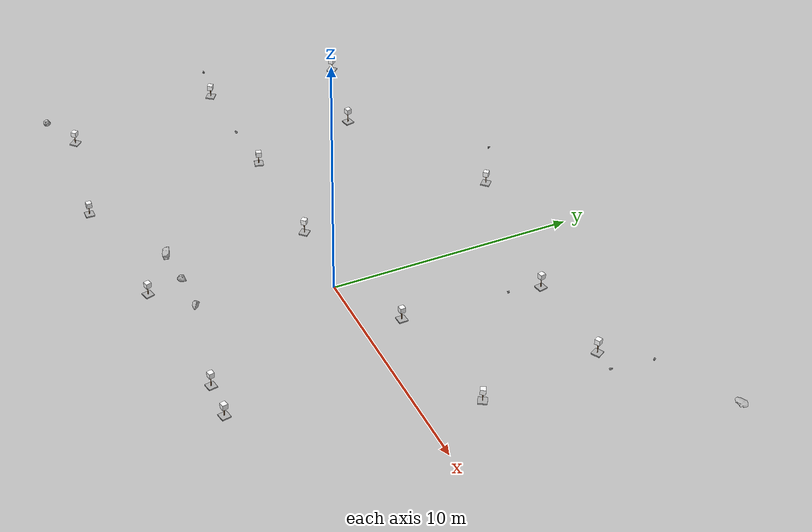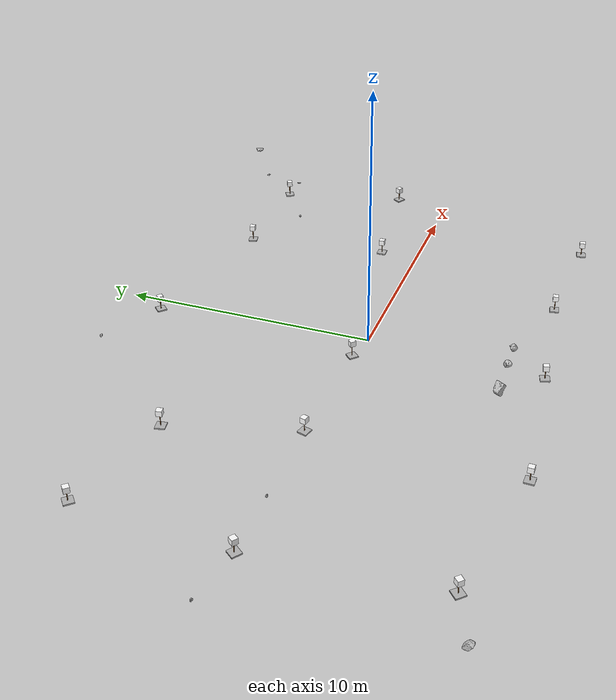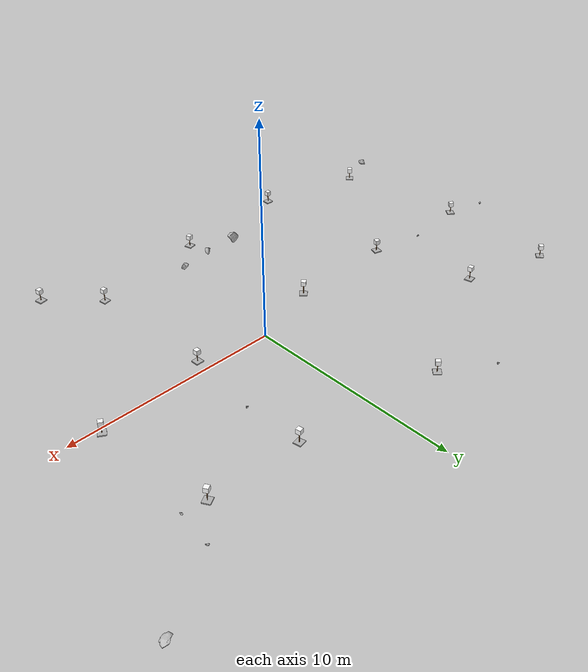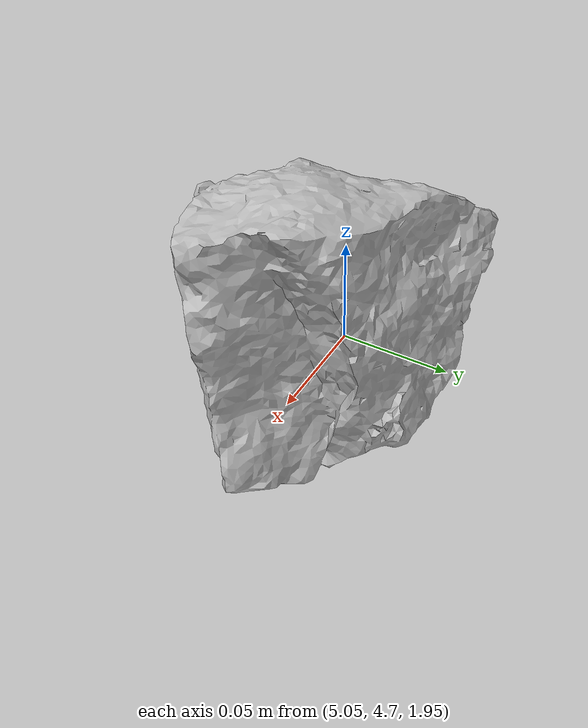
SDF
<sdf version="1.7">
 <world name="marsyard">
  <gravity>0 0 -9.81</gravity>
  <physics name="dart_physics" type="ignored">
   <max_step_size>0.003</max_step_size>
   <real_time_update_rate>333</real_time_update_rate>
   <real_time_factor>1.0</real_time_factor>
  </physics>
  <plugin filename="ignition-gazebo-physics-system" name="ignition::gazebo::systems::Physics"/>
  <plugin filename="ignition-gazebo-user-commands-system" name="ignition::gazebo::systems::UserCommands"/>
  <plugin filename="ignition-gazebo-scene-broadcaster-system" name="ignition::gazebo::systems::SceneBroadcaster"/>
  <plugin filename="ignition-gazebo-contact-system" name="ignition::gazebo::systems::Contact"/>
  <plugin filename="ignition-gazebo-sensors-system" name="ignition::gazebo::systems::Sensors">
   <render_engine>ogre2</render_engine>
  </plugin>
  <plugin filename="ignition-gazebo-imu-system" name="ignition::gazebo::systems::Imu"/>
  <plugin filename="ignition-gazebo-magnetometer-system" name="ignition::gazebo::systems::Magnetometer"/>
  <scene>
   <ambient>0.95 0.95 0.95 1</ambient>
   <background>0.70 0.70 0.70 1</background>
   <shadows>false</shadows>
  </scene>
  <light type="directional" name="sun">
   <cast_shadows>false</cast_shadows>
   <pose>0 0 30 0 0 0</pose>
   <diffuse>1 1 1 1</diffuse>
   <specular>0.15 0.15 0.15 1</specular>
   <direction>-0.35 0.1 -0.93</direction>
  </light>
  <model name="Rock_1">
   <static>true</static>
   <pose>-3.0000 -5.5000 1.2633 0.0000 0.0000 2.8653</pose>
   <link name="link">
    <visual name="visual">
     <geometry><mesh><uri>package://rock_generator/rocks_ws/rock_1/meshes/rock_1.obj</uri></mesh></geometry>
    </visual>
    <collision name="collision">
     <geometry><mesh><uri>package://rock_generator/rocks_ws/rock_1/meshes/rock_1.obj</uri></mesh></geometry>
    </collision>
   </link>
  </model>
  <model name="Rock_2">
   <static>true</static>
   <pose>-1.5000 -5.5000 1.2031 0.0000 0.0000 -2.5661</pose>
   <link name="link">
    <visual name="visual">
     <geometry><mesh><uri>package://rock_generator/rocks_ws/rock_3/meshes/rock_3.obj</uri></mesh></geometry>
    </visual>
    <collision name="collision">
     <geometry><mesh><uri>package://rock_generator/rocks_ws/rock_3/meshes/rock_3.obj</uri></mesh></geometry>
    </collision>
   </link>
  </model>
  <model name="Rock_3">
   <static>true</static>
   <pose>0.0000 -5.5000 0.9745 0.0000 0.0000 2.1080</pose>
   <link name="link">
    <visual name="visual">
     <geometry><mesh><uri>package://rock_generator/rocks_ws/rock_3/meshes/rock_3.obj</uri></mesh></geometry>
    </visual>
    <collision name="collision">
     <geometry><mesh><uri>package://rock_generator/rocks_ws/rock_3/meshes/rock_3.obj</uri></mesh></geometry>
    </collision>
   </link>
  </model>
  <model name="Rock_5">
   <static>true</static>
   <pose>12.8342 9.8867 1.1183 0.0000 0.0000 0.2776</pose>
   <link name="link">
    <visual name="visual">
     <geometry><mesh><uri>package://rock_generator/rocks_ws/rock_8/meshes/rock_8.obj</uri></mesh></geometry>
    </visual>
    <collision name="collision">
     <geometry><mesh><uri>package://rock_generator/rocks_ws/rock_8/meshes/rock_8.obj</uri></mesh></geometry>
    </collision>
   </link>
  </model>
  <model name="Rock_6">
   <static>true</static>
   <pose>9.8386 8.1627 1.3301 0.0000 0.0000 -0.8544</pose>
   <link name="link">
    <visual name="visual">
     <geometry><mesh><uri>package://rock_generator/rocks_ws/rock_6/meshes/rock_6.obj</uri></mesh></geometry>
    </visual>
   </link>
  </model>
  <model name="Rock_7">
   <static>true</static>
   <pose>-13.7364 -7.0964 1.0037 0.0000 0.0000 -1.6927</pose>
   <link name="link">
    <visual name="visual">
     <geometry><mesh><uri>package://rock_generator/rocks_ws/rock_3/meshes/rock_3.obj</uri></mesh></geometry>
    </visual>
    <collision name="collision">
     <geometry><mesh><uri>package://rock_generator/rocks_ws/rock_3/meshes/rock_3.obj</uri></mesh></geometry>
    </collision>
   </link>
  </model>
  <model name="Rock_8">
   <static>true</static>
   <pose>-14.6257 0.2249 0.9982 0.0000 0.0000 3.1333</pose>
   <link name="link">
    <visual name="visual">
     <geometry><mesh><uri>package://rock_generator/rocks_ws/rock_9/meshes/rock_9.obj</uri></mesh></geometry>
    </visual>
    <collision name="collision">
     <geometry><mesh><uri>package://rock_generator/rocks_ws/rock_9/meshes/rock_9.obj</uri></mesh></geometry>
    </collision>
   </link>
  </model>
  <model name="Rock_9">
   <static>true</static>
   <pose>9.5943 6.5287 1.2725 0.0000 0.0000 1.4728</pose>
   <link name="link">
    <visual name="visual">
     <geometry><mesh><uri>package://rock_generator/rocks_ws/rock_6/meshes/rock_6.obj</uri></mesh></geometry>
    </visual>
   </link>
  </model>
  <model name="Rock_10">
   <static>true</static>
   <pose>5.1281 4.7333 2.0340 0.0000 0.0000 -0.2425</pose>
   <link name="link">
    <visual name="visual">
     <geometry><mesh><uri>package://rock_generator/rocks_ws/rock_9/meshes/rock_9.obj</uri></mesh></geometry>
    </visual>
    <collision name="collision">
     <geometry><mesh><uri>package://rock_generator/rocks_ws/rock_9/meshes/rock_9.obj</uri></mesh></geometry>
    </collision>
   </link>
  </model>
  <model name="Rock_11">
   <static>true</static>
   <pose>-10.0687 -0.0426 0.8267 0.0000 0.0000 0.0967</pose>
   <link name="link">
    <visual name="visual">
     <geometry><mesh><uri>package://rock_generator/rocks_ws/rock_6/meshes/rock_6.obj</uri></mesh></geometry>
    </visual>
   </link>
  </model>
  <model name="Rock_12">
   <static>true</static>
   <pose>-4.4500 8.8699 1.0974 0.0000 0.0000 -0.9376</pose>
   <link name="link">
    <visual name="visual">
     <geometry><mesh><uri>package://rock_generator/rocks_ws/rock_9/meshes/rock_9.obj</uri></mesh></geometry>
    </visual>
   </link>
  </model>
  <model name="ArUco_1">
   <pose>-12.450300 5.334200 1.029715 0.000000 0.000000 0.738259</pose>
   <include><uri>model://aruco_1</uri></include>
  </model>
  <model name="ArUco_2">
   <pose>-8.450300 4.334200 1.099796 0.000000 0.000000 0.189239</pose>
   <include><uri>model://aruco_2</uri></include>
  </model>
  <model name="ArUco_3">
   <pose>-2.200300 7.584200 1.154883 0.000000 0.000000 -2.337035</pose>
   <include><uri>model://aruco_3</uri></include>
  </model>
  <model name="ArUco_4">
   <pose>4.299700 6.584200 0.990323 0.000000 0.000000 0.191067</pose>
   <include><uri>model://aruco_4</uri></include>
  </model>
  <model name="ArUco_5">
   <pose>8.549700 6.584200 1.138390 0.000000 0.000000 -1.049408</pose>
   <include><uri>model://aruco_5</uri></include>
  </model>
  <model name="ArUco_6">
   <pose>-12.700300 -0.165800 1.010542 0.000000 0.000000 -0.638148</pose>
   <include><uri>model://aruco_6</uri></include>
  </model>
  <model name="ArUco_7">
   <pose>-7.200300 -0.165800 1.131783 0.000000 0.000000 -1.838701</pose>
   <include><uri>model://aruco_7</uri></include>
  </model>
  <model name="ArUco_8">
   <pose>-2.450300 -0.165800 0.946400 0.000000 0.000000 0.789938</pose>
   <include><uri>model://aruco_8</uri></include>
  </model>
  <model name="ArUco_9">
   <pose>4.299700 0.834200 1.425683 0.000000 0.000000 -1.541121</pose>
   <include><uri>model://aruco_9</uri></include>
  </model>
  <model name="ArUco_10">
   <pose>9.299700 1.584200 1.341597 0.000000 0.000000 -0.534976</pose>
   <include><uri>model://aruco_10</uri></include>
  </model>
  <model name="ArUco_11">
   <pose>-11.950300 -6.415800 0.873342 0.000000 0.000000 -2.394785</pose>
   <include><uri>model://aruco_11</uri></include>
  </model>
  <model name="ArUco_12">
   <pose>-6.950300 -7.415800 0.976442 0.000000 0.000000 1.528778</pose>
   <include><uri>model://aruco_12</uri></include>
  </model>
  <model name="ArUco_13">
   <pose>-1.450300 -6.915800 0.879942 0.000000 0.000000 1.822982</pose>
   <include><uri>model://aruco_13</uri></include>
  </model>
  <model name="ArUco_14">
   <pose>3.799700 -6.415800 0.451417 0.000000 0.000000 -1.405322</pose>
   <include><uri>model://aruco_14</uri></include>
  </model>
  <model name="ArUco_15">
   <pose>6.549700 -6.915800 1.544783 0.000000 0.000000 1.749737</pose>
   <include><uri>model://aruco_15</uri></include>
  </model>
 </world>
</sdf>

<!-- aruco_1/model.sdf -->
<sdf version="1.6">
  <model name="aruco_1">
    <static>true</static>
    <link name="link">
      <visual name="base_visual">
        <pose>0 0 0.025 0 0 0</pose>
        <geometry>
          <box>
            <size>0.35 0.35 0.05</size>
          </box>
        </geometry>
        <material>
          <ambient>0.7 0.7 0.7 1</ambient>
          <diffuse>0.7 0.7 0.7 1</diffuse>
        </material>
      </visual>
      <collision name="base_collision">
        <pose>0 0 0.025 0 0 0</pose>
        <geometry>
          <box>
            <size>0.35 0.35 0.05</size>
          </box>
        </geometry>
      </collision>
      <visual name="pole_visual">
        <pose>0 0 0.228500 0 0 0</pose>
        <geometry>
          <cylinder>
            <radius>0.015</radius>
            <length>0.357000</length>
          </cylinder>
        </geometry>
        <material>
          <ambient>0.6 0.4 0.2 1</ambient>
          <diffuse>0.6 0.4 0.2 1</diffuse>
        </material>
      </visual>
      <collision name="pole_collision">
        <pose>0 0 0.228500 0 0 0</pose>
        <geometry>
          <cylinder>
            <radius>0.015</radius>
            <length>0.357000</length>
          </cylinder>
        </geometry>
      </collision>
      <visual name="head_visual">
        <pose>0 0 0.496250 0 0 0</pose>
        <geometry>
          <box>
            <size>0.21 0.21 0.21</size>
          </box>
        </geometry>
        <material>
          <ambient>1 1 1 1</ambient>
          <diffuse>1 1 1 1</diffuse>
          <pbr>
            <metal>
              <albedo_map>model://aruco_1/materials/textures/marker_1.png</albedo_map>
            </metal>
          </pbr>
        </material>
      </visual>
      <collision name="head_collision">
        <pose>0 0 0.496250 0 0 0</pose>
        <geometry>
          <box>
            <size>0.21 0.21 0.21</size>
          </box>
        </geometry>
      </collision>
    </link>
  </model>
</sdf>

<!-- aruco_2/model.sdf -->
<sdf version="1.6">
  <model name="aruco_2">
    <static>true</static>
    <link name="link">
      <!-- Concrete Base -->
      <visual name="base_visual">
        <pose>0 0 0.025 0 0 0</pose>
        <geometry>
          <box>
            <size>0.35 0.35 0.05</size>
          </box>
        </geometry>
        <material>
          <ambient>0.7 0.7 0.7 1</ambient>
          <diffuse>0.7 0.7 0.7 1</diffuse>
        </material>
      </visual>
      <collision name="base_collision">
        <pose>0 0 0.025 0 0 0</pose>
        <geometry>
          <box>
            <size>0.35 0.35 0.05</size>
          </box>
        </geometry>
      </collision>

      <!-- Wooden Pole -->
      <visual name="pole_visual">
        <pose>0 0 0.26 0 0 0</pose>
        <geometry>
          <cylinder>
            <radius>0.015</radius>
            <length>0.42</length>
          </cylinder>
        </geometry>
        <material>
          <ambient>0.6 0.4 0.2 1</ambient>
          <diffuse>0.6 0.4 0.2 1</diffuse>
        </material>
      </visual>
      <collision name="pole_collision">
        <pose>0 0 0.26 0 0 0</pose>
        <geometry>
          <cylinder>
            <radius>0.015</radius>
            <length>0.42</length>
          </cylinder>
        </geometry>
      </collision>

      <!-- Head Box with ArUco Texture -->
      <visual name="head_visual">
        <pose>0 0 0.575 0 0 0</pose>
        <geometry>
          <box>
            <size>0.21 0.21 0.21</size>
          </box>
        </geometry>
        <material>
          <ambient>1 1 1 1</ambient>
          <diffuse>1 1 1 1</diffuse>
          <pbr>
            <metal>
              <albedo_map>model://aruco_2/materials/textures/marker_2.png</albedo_map>
            </metal>
          </pbr>
        </material>
      </visual>
      <collision name="head_collision">
        <pose>0 0 0.575 0 0 0</pose>
        <geometry>
          <box>
            <size>0.21 0.21 0.21</size>
          </box>
        </geometry>
      </collision>
    </link>
  </model>
</sdf>

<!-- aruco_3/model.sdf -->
<sdf version="1.6">
  <model name="aruco_3">
    <static>true</static>
    <link name="link">
      <visual name="base_visual">
        <pose>0 0 0.025 0 0 0</pose>
        <geometry>
          <box>
            <size>0.35 0.35 0.05</size>
          </box>
        </geometry>
        <material>
          <ambient>0.7 0.7 0.7 1</ambient>
          <diffuse>0.7 0.7 0.7 1</diffuse>
        </material>
      </visual>
      <collision name="base_collision">
        <pose>0 0 0.025 0 0 0</pose>
        <geometry>
          <box>
            <size>0.35 0.35 0.05</size>
          </box>
        </geometry>
      </collision>
      <visual name="pole_visual">
        <pose>0 0 0.228500 0 0 0</pose>
        <geometry>
          <cylinder>
            <radius>0.015</radius>
            <length>0.357000</length>
          </cylinder>
        </geometry>
        <material>
          <ambient>0.6 0.4 0.2 1</ambient>
          <diffuse>0.6 0.4 0.2 1</diffuse>
        </material>
      </visual>
      <collision name="pole_collision">
        <pose>0 0 0.228500 0 0 0</pose>
        <geometry>
          <cylinder>
            <radius>0.015</radius>
            <length>0.357000</length>
          </cylinder>
        </geometry>
      </collision>
      <visual name="head_visual">
        <pose>0 0 0.496250 0 0 0</pose>
        <geometry>
          <box>
            <size>0.21 0.21 0.21</size>
          </box>
        </geometry>
        <material>
          <ambient>1 1 1 1</ambient>
          <diffuse>1 1 1 1</diffuse>
          <pbr>
            <metal>
              <albedo_map>model://aruco_3/materials/textures/marker_3.png</albedo_map>
            </metal>
          </pbr>
        </material>
      </visual>
      <collision name="head_collision">
        <pose>0 0 0.496250 0 0 0</pose>
        <geometry>
          <box>
            <size>0.21 0.21 0.21</size>
          </box>
        </geometry>
      </collision>
    </link>
  </model>
</sdf>

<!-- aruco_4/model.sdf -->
<sdf version="1.6">
  <model name="aruco_4">
    <static>true</static>
    <link name="link">
      <!-- Concrete Base -->
      <visual name="base_visual">
        <pose>0 0 0.025 0 0 0</pose>
        <geometry>
          <box>
            <size>0.35 0.35 0.05</size>
          </box>
        </geometry>
        <material>
          <ambient>0.7 0.7 0.7 1</ambient>
          <diffuse>0.7 0.7 0.7 1</diffuse>
        </material>
      </visual>
      <collision name="base_collision">
        <pose>0 0 0.025 0 0 0</pose>
        <geometry>
          <box>
            <size>0.35 0.35 0.05</size>
          </box>
        </geometry>
      </collision>

      <!-- Wooden Pole -->
      <visual name="pole_visual">
        <pose>0 0 0.26 0 0 0</pose>
        <geometry>
          <cylinder>
            <radius>0.015</radius>
            <length>0.42</length>
          </cylinder>
        </geometry>
        <material>
          <ambient>0.6 0.4 0.2 1</ambient>
          <diffuse>0.6 0.4 0.2 1</diffuse>
        </material>
      </visual>
      <collision name="pole_collision">
        <pose>0 0 0.26 0 0 0</pose>
        <geometry>
          <cylinder>
            <radius>0.015</radius>
            <length>0.42</length>
          </cylinder>
        </geometry>
      </collision>

      <!-- Head Box with ArUco Texture -->
      <visual name="head_visual">
        <pose>0 0 0.575 0 0 0</pose>
        <geometry>
          <box>
            <size>0.21 0.21 0.21</size>
          </box>
        </geometry>
        <material>
          <ambient>1 1 1 1</ambient>
          <diffuse>1 1 1 1</diffuse>
          <pbr>
            <metal>
              <albedo_map>model://aruco_4/materials/textures/marker_4.png</albedo_map>
            </metal>
          </pbr>
        </material>
      </visual>
      <collision name="head_collision">
        <pose>0 0 0.575 0 0 0</pose>
        <geometry>
          <box>
            <size>0.21 0.21 0.21</size>
          </box>
        </geometry>
      </collision>
    </link>
  </model>
</sdf>

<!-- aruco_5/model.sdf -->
<sdf version="1.6">
  <model name="aruco_5">
    <static>true</static>
    <link name="link">
      <!-- Concrete Base -->
      <visual name="base_visual">
        <pose>0 0 0.025 0 0 0</pose>
        <geometry>
          <box>
            <size>0.35 0.35 0.05</size>
          </box>
        </geometry>
        <material>
          <ambient>0.7 0.7 0.7 1</ambient>
          <diffuse>0.7 0.7 0.7 1</diffuse>
        </material>
      </visual>
      <collision name="base_collision">
        <pose>0 0 0.025 0 0 0</pose>
        <geometry>
          <box>
            <size>0.35 0.35 0.05</size>
          </box>
        </geometry>
      </collision>

      <!-- Wooden Pole -->
      <visual name="pole_visual">
        <pose>0 0 0.26 0 0 0</pose>
        <geometry>
          <cylinder>
            <radius>0.015</radius>
            <length>0.42</length>
          </cylinder>
        </geometry>
        <material>
          <ambient>0.6 0.4 0.2 1</ambient>
          <diffuse>0.6 0.4 0.2 1</diffuse>
        </material>
      </visual>
      <collision name="pole_collision">
        <pose>0 0 0.26 0 0 0</pose>
        <geometry>
          <cylinder>
            <radius>0.015</radius>
            <length>0.42</length>
          </cylinder>
        </geometry>
      </collision>

      <!-- Head Box with ArUco Texture -->
      <visual name="head_visual">
        <pose>0 0 0.575 0 0 0</pose>
        <geometry>
          <box>
            <size>0.21 0.21 0.21</size>
          </box>
        </geometry>
        <material>
          <ambient>1 1 1 1</ambient>
          <diffuse>1 1 1 1</diffuse>
          <pbr>
            <metal>
              <albedo_map>model://aruco_5/materials/textures/marker_5.png</albedo_map>
            </metal>
          </pbr>
        </material>
      </visual>
      <collision name="head_collision">
        <pose>0 0 0.575 0 0 0</pose>
        <geometry>
          <box>
            <size>0.21 0.21 0.21</size>
          </box>
        </geometry>
      </collision>
    </link>
  </model>
</sdf>

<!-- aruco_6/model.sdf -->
<sdf version="1.6">
  <model name="aruco_6">
    <static>true</static>
    <link name="link">
      <visual name="base_visual">
        <pose>0 0 0.025 0 0 0</pose>
        <geometry>
          <box>
            <size>0.35 0.35 0.05</size>
          </box>
        </geometry>
        <material>
          <ambient>0.7 0.7 0.7 1</ambient>
          <diffuse>0.7 0.7 0.7 1</diffuse>
        </material>
      </visual>
      <collision name="base_collision">
        <pose>0 0 0.025 0 0 0</pose>
        <geometry>
          <box>
            <size>0.35 0.35 0.05</size>
          </box>
        </geometry>
      </collision>
      <visual name="pole_visual">
        <pose>0 0 0.228500 0 0 0</pose>
        <geometry>
          <cylinder>
            <radius>0.015</radius>
            <length>0.357000</length>
          </cylinder>
        </geometry>
        <material>
          <ambient>0.6 0.4 0.2 1</ambient>
          <diffuse>0.6 0.4 0.2 1</diffuse>
        </material>
      </visual>
      <collision name="pole_collision">
        <pose>0 0 0.228500 0 0 0</pose>
        <geometry>
          <cylinder>
            <radius>0.015</radius>
            <length>0.357000</length>
          </cylinder>
        </geometry>
      </collision>
      <visual name="head_visual">
        <pose>0 0 0.496250 0 0 0</pose>
        <geometry>
          <box>
            <size>0.21 0.21 0.21</size>
          </box>
        </geometry>
        <material>
          <ambient>1 1 1 1</ambient>
          <diffuse>1 1 1 1</diffuse>
          <pbr>
            <metal>
              <albedo_map>model://aruco_6/materials/textures/marker_6.png</albedo_map>
            </metal>
          </pbr>
        </material>
      </visual>
      <collision name="head_collision">
        <pose>0 0 0.496250 0 0 0</pose>
        <geometry>
          <box>
            <size>0.21 0.21 0.21</size>
          </box>
        </geometry>
      </collision>
    </link>
  </model>
</sdf>

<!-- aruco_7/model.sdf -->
<sdf version="1.6">
  <model name="aruco_7">
    <static>true</static>
    <link name="link">
      <visual name="base_visual">
        <pose>0 0 0.025 0 0 0</pose>
        <geometry>
          <box>
            <size>0.35 0.35 0.05</size>
          </box>
        </geometry>
        <material>
          <ambient>0.7 0.7 0.7 1</ambient>
          <diffuse>0.7 0.7 0.7 1</diffuse>
        </material>
      </visual>
      <collision name="base_collision">
        <pose>0 0 0.025 0 0 0</pose>
        <geometry>
          <box>
            <size>0.35 0.35 0.05</size>
          </box>
        </geometry>
      </collision>
      <visual name="pole_visual">
        <pose>0 0 0.228500 0 0 0</pose>
        <geometry>
          <cylinder>
            <radius>0.015</radius>
            <length>0.357000</length>
          </cylinder>
        </geometry>
        <material>
          <ambient>0.6 0.4 0.2 1</ambient>
          <diffuse>0.6 0.4 0.2 1</diffuse>
        </material>
      </visual>
      <collision name="pole_collision">
        <pose>0 0 0.228500 0 0 0</pose>
        <geometry>
          <cylinder>
            <radius>0.015</radius>
            <length>0.357000</length>
          </cylinder>
        </geometry>
      </collision>
      <visual name="head_visual">
        <pose>0 0 0.496250 0 0 0</pose>
        <geometry>
          <box>
            <size>0.21 0.21 0.21</size>
          </box>
        </geometry>
        <material>
          <ambient>1 1 1 1</ambient>
          <diffuse>1 1 1 1</diffuse>
          <pbr>
            <metal>
              <albedo_map>model://aruco_7/materials/textures/marker_7.png</albedo_map>
            </metal>
          </pbr>
        </material>
      </visual>
      <collision name="head_collision">
        <pose>0 0 0.496250 0 0 0</pose>
        <geometry>
          <box>
            <size>0.21 0.21 0.21</size>
          </box>
        </geometry>
      </collision>
    </link>
  </model>
</sdf>

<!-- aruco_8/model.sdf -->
<sdf version="1.6">
  <model name="aruco_8">
    <static>true</static>
    <link name="link">
      <!-- Concrete Base -->
      <visual name="base_visual">
        <pose>0 0 0.025 0 0 0</pose>
        <geometry>
          <box>
            <size>0.35 0.35 0.05</size>
          </box>
        </geometry>
        <material>
          <ambient>0.7 0.7 0.7 1</ambient>
          <diffuse>0.7 0.7 0.7 1</diffuse>
        </material>
      </visual>
      <collision name="base_collision">
        <pose>0 0 0.025 0 0 0</pose>
        <geometry>
          <box>
            <size>0.35 0.35 0.05</size>
          </box>
        </geometry>
      </collision>

      <!-- Wooden Pole -->
      <visual name="pole_visual">
        <pose>0 0 0.26 0 0 0</pose>
        <geometry>
          <cylinder>
            <radius>0.015</radius>
            <length>0.42</length>
          </cylinder>
        </geometry>
        <material>
          <ambient>0.6 0.4 0.2 1</ambient>
          <diffuse>0.6 0.4 0.2 1</diffuse>
        </material>
      </visual>
      <collision name="pole_collision">
        <pose>0 0 0.26 0 0 0</pose>
        <geometry>
          <cylinder>
            <radius>0.015</radius>
            <length>0.42</length>
          </cylinder>
        </geometry>
      </collision>

      <!-- Head Box with ArUco Texture -->
      <visual name="head_visual">
        <pose>0 0 0.575 0 0 0</pose>
        <geometry>
          <box>
            <size>0.21 0.21 0.21</size>
          </box>
        </geometry>
        <material>
          <ambient>1 1 1 1</ambient>
          <diffuse>1 1 1 1</diffuse>
          <pbr>
            <metal>
              <albedo_map>model://aruco_8/materials/textures/marker_8.png</albedo_map>
            </metal>
          </pbr>
        </material>
      </visual>
      <collision name="head_collision">
        <pose>0 0 0.575 0 0 0</pose>
        <geometry>
          <box>
            <size>0.21 0.21 0.21</size>
          </box>
        </geometry>
      </collision>
    </link>
  </model>
</sdf>

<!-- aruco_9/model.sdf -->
<sdf version="1.6">
  <model name="aruco_9">
    <static>true</static>
    <link name="link">
      <visual name="base_visual">
        <pose>0 0 0.025 0 0 0</pose>
        <geometry>
          <box>
            <size>0.35 0.35 0.05</size>
          </box>
        </geometry>
        <material>
          <ambient>0.7 0.7 0.7 1</ambient>
          <diffuse>0.7 0.7 0.7 1</diffuse>
        </material>
      </visual>
      <collision name="base_collision">
        <pose>0 0 0.025 0 0 0</pose>
        <geometry>
          <box>
            <size>0.35 0.35 0.05</size>
          </box>
        </geometry>
      </collision>
      <visual name="pole_visual">
        <pose>0 0 0.228500 0 0 0</pose>
        <geometry>
          <cylinder>
            <radius>0.015</radius>
            <length>0.357000</length>
          </cylinder>
        </geometry>
        <material>
          <ambient>0.6 0.4 0.2 1</ambient>
          <diffuse>0.6 0.4 0.2 1</diffuse>
        </material>
      </visual>
      <collision name="pole_collision">
        <pose>0 0 0.228500 0 0 0</pose>
        <geometry>
          <cylinder>
            <radius>0.015</radius>
            <length>0.357000</length>
          </cylinder>
        </geometry>
      </collision>
      <visual name="head_visual">
        <pose>0 0 0.496250 0 0 0</pose>
        <geometry>
          <box>
            <size>0.21 0.21 0.21</size>
          </box>
        </geometry>
        <material>
          <ambient>1 1 1 1</ambient>
          <diffuse>1 1 1 1</diffuse>
          <pbr>
            <metal>
              <albedo_map>model://aruco_9/materials/textures/marker_9.png</albedo_map>
            </metal>
          </pbr>
        </material>
      </visual>
      <collision name="head_collision">
        <pose>0 0 0.496250 0 0 0</pose>
        <geometry>
          <box>
            <size>0.21 0.21 0.21</size>
          </box>
        </geometry>
      </collision>
    </link>
  </model>
</sdf>

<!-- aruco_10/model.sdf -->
<sdf version="1.6">
  <model name="aruco_10">
    <static>true</static>
    <link name="link">
      <visual name="base_visual">
        <pose>0 0 0.025 0 0 0</pose>
        <geometry>
          <box>
            <size>0.35 0.35 0.05</size>
          </box>
        </geometry>
        <material>
          <ambient>0.7 0.7 0.7 1</ambient>
          <diffuse>0.7 0.7 0.7 1</diffuse>
        </material>
      </visual>
      <collision name="base_collision">
        <pose>0 0 0.025 0 0 0</pose>
        <geometry>
          <box>
            <size>0.35 0.35 0.05</size>
          </box>
        </geometry>
      </collision>
      <visual name="pole_visual">
        <pose>0 0 0.228500 0 0 0</pose>
        <geometry>
          <cylinder>
            <radius>0.015</radius>
            <length>0.357000</length>
          </cylinder>
        </geometry>
        <material>
          <ambient>0.6 0.4 0.2 1</ambient>
          <diffuse>0.6 0.4 0.2 1</diffuse>
        </material>
      </visual>
      <collision name="pole_collision">
        <pose>0 0 0.228500 0 0 0</pose>
        <geometry>
          <cylinder>
            <radius>0.015</radius>
            <length>0.357000</length>
          </cylinder>
        </geometry>
      </collision>
      <visual name="head_visual">
        <pose>0 0 0.496250 0 0 0</pose>
        <geometry>
          <box>
            <size>0.21 0.21 0.21</size>
          </box>
        </geometry>
        <material>
          <ambient>1 1 1 1</ambient>
          <diffuse>1 1 1 1</diffuse>
          <pbr>
            <metal>
              <albedo_map>model://aruco_10/materials/textures/marker_10.png</albedo_map>
            </metal>
          </pbr>
        </material>
      </visual>
      <collision name="head_collision">
        <pose>0 0 0.496250 0 0 0</pose>
        <geometry>
          <box>
            <size>0.21 0.21 0.21</size>
          </box>
        </geometry>
      </collision>
    </link>
  </model>
</sdf>

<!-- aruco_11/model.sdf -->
<sdf version="1.6">
  <model name="aruco_11">
    <static>true</static>
    <link name="link">
      <visual name="base_visual">
        <pose>0 0 0.025 0 0 0</pose>
        <geometry>
          <box>
            <size>0.35 0.35 0.05</size>
          </box>
        </geometry>
        <material>
          <ambient>0.7 0.7 0.7 1</ambient>
          <diffuse>0.7 0.7 0.7 1</diffuse>
        </material>
      </visual>
      <collision name="base_collision">
        <pose>0 0 0.025 0 0 0</pose>
        <geometry>
          <box>
            <size>0.35 0.35 0.05</size>
          </box>
        </geometry>
      </collision>
      <visual name="pole_visual">
        <pose>0 0 0.228500 0 0 0</pose>
        <geometry>
          <cylinder>
            <radius>0.015</radius>
            <length>0.357000</length>
          </cylinder>
        </geometry>
        <material>
          <ambient>0.6 0.4 0.2 1</ambient>
          <diffuse>0.6 0.4 0.2 1</diffuse>
        </material>
      </visual>
      <collision name="pole_collision">
        <pose>0 0 0.228500 0 0 0</pose>
        <geometry>
          <cylinder>
            <radius>0.015</radius>
            <length>0.357000</length>
          </cylinder>
        </geometry>
      </collision>
      <visual name="head_visual">
        <pose>0 0 0.496250 0 0 0</pose>
        <geometry>
          <box>
            <size>0.21 0.21 0.21</size>
          </box>
        </geometry>
        <material>
          <ambient>1 1 1 1</ambient>
          <diffuse>1 1 1 1</diffuse>
          <pbr>
            <metal>
              <albedo_map>model://aruco_11/materials/textures/marker_11.png</albedo_map>
            </metal>
          </pbr>
        </material>
      </visual>
      <collision name="head_collision">
        <pose>0 0 0.496250 0 0 0</pose>
        <geometry>
          <box>
            <size>0.21 0.21 0.21</size>
          </box>
        </geometry>
      </collision>
    </link>
  </model>
</sdf>

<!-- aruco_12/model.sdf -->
<sdf version="1.6">
  <model name="aruco_12">
    <static>true</static>
    <link name="link">
      <visual name="base_visual">
        <pose>0 0 0.025 0 0 0</pose>
        <geometry>
          <box>
            <size>0.35 0.35 0.05</size>
          </box>
        </geometry>
        <material>
          <ambient>0.7 0.7 0.7 1</ambient>
          <diffuse>0.7 0.7 0.7 1</diffuse>
        </material>
      </visual>
      <collision name="base_collision">
        <pose>0 0 0.025 0 0 0</pose>
        <geometry>
          <box>
            <size>0.35 0.35 0.05</size>
          </box>
        </geometry>
      </collision>
      <visual name="pole_visual">
        <pose>0 0 0.228500 0 0 0</pose>
        <geometry>
          <cylinder>
            <radius>0.015</radius>
            <length>0.357000</length>
          </cylinder>
        </geometry>
        <material>
          <ambient>0.6 0.4 0.2 1</ambient>
          <diffuse>0.6 0.4 0.2 1</diffuse>
        </material>
      </visual>
      <collision name="pole_collision">
        <pose>0 0 0.228500 0 0 0</pose>
        <geometry>
          <cylinder>
            <radius>0.015</radius>
            <length>0.357000</length>
          </cylinder>
        </geometry>
      </collision>
      <visual name="head_visual">
        <pose>0 0 0.496250 0 0 0</pose>
        <geometry>
          <box>
            <size>0.21 0.21 0.21</size>
          </box>
        </geometry>
        <material>
          <ambient>1 1 1 1</ambient>
          <diffuse>1 1 1 1</diffuse>
          <pbr>
            <metal>
              <albedo_map>model://aruco_12/materials/textures/marker_12.png</albedo_map>
            </metal>
          </pbr>
        </material>
      </visual>
      <collision name="head_collision">
        <pose>0 0 0.496250 0 0 0</pose>
        <geometry>
          <box>
            <size>0.21 0.21 0.21</size>
          </box>
        </geometry>
      </collision>
    </link>
  </model>
</sdf>

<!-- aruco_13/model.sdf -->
<sdf version="1.6">
  <model name="aruco_13">
    <static>true</static>
    <link name="link">
      <visual name="base_visual">
        <pose>0 0 0.025 0 0 0</pose>
        <geometry>
          <box>
            <size>0.35 0.35 0.05</size>
          </box>
        </geometry>
        <material>
          <ambient>0.7 0.7 0.7 1</ambient>
          <diffuse>0.7 0.7 0.7 1</diffuse>
        </material>
      </visual>
      <collision name="base_collision">
        <pose>0 0 0.025 0 0 0</pose>
        <geometry>
          <box>
            <size>0.35 0.35 0.05</size>
          </box>
        </geometry>
      </collision>
      <visual name="pole_visual">
        <pose>0 0 0.228500 0 0 0</pose>
        <geometry>
          <cylinder>
            <radius>0.015</radius>
            <length>0.357000</length>
          </cylinder>
        </geometry>
        <material>
          <ambient>0.6 0.4 0.2 1</ambient>
          <diffuse>0.6 0.4 0.2 1</diffuse>
        </material>
      </visual>
      <collision name="pole_collision">
        <pose>0 0 0.228500 0 0 0</pose>
        <geometry>
          <cylinder>
            <radius>0.015</radius>
            <length>0.357000</length>
          </cylinder>
        </geometry>
      </collision>
      <visual name="head_visual">
        <pose>0 0 0.496250 0 0 0</pose>
        <geometry>
          <box>
            <size>0.21 0.21 0.21</size>
          </box>
        </geometry>
        <material>
          <ambient>1 1 1 1</ambient>
          <diffuse>1 1 1 1</diffuse>
          <pbr>
            <metal>
              <albedo_map>model://aruco_13/materials/textures/marker_13.png</albedo_map>
            </metal>
          </pbr>
        </material>
      </visual>
      <collision name="head_collision">
        <pose>0 0 0.496250 0 0 0</pose>
        <geometry>
          <box>
            <size>0.21 0.21 0.21</size>
          </box>
        </geometry>
      </collision>
    </link>
  </model>
</sdf>

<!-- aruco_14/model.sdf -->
<sdf version="1.6">
  <model name="aruco_14">
    <static>true</static>
    <link name="link">
      <!-- Concrete Base -->
      <visual name="base_visual">
        <pose>0 0 0.025 0 0 0</pose>
        <geometry>
          <box>
            <size>0.35 0.35 0.05</size>
          </box>
        </geometry>
        <material>
          <ambient>0.7 0.7 0.7 1</ambient>
          <diffuse>0.7 0.7 0.7 1</diffuse>
        </material>
      </visual>
      <collision name="base_collision">
        <pose>0 0 0.025 0 0 0</pose>
        <geometry>
          <box>
            <size>0.35 0.35 0.05</size>
          </box>
        </geometry>
      </collision>

      <!-- Wooden Pole -->
      <visual name="pole_visual">
        <pose>0 0 0.26 0 0 0</pose>
        <geometry>
          <cylinder>
            <radius>0.015</radius>
            <length>0.42</length>
          </cylinder>
        </geometry>
        <material>
          <ambient>0.6 0.4 0.2 1</ambient>
          <diffuse>0.6 0.4 0.2 1</diffuse>
        </material>
      </visual>
      <collision name="pole_collision">
        <pose>0 0 0.26 0 0 0</pose>
        <geometry>
          <cylinder>
            <radius>0.015</radius>
            <length>0.42</length>
          </cylinder>
        </geometry>
      </collision>

      <!-- Head Box with ArUco Texture -->
      <visual name="head_visual">
        <pose>0 0 0.575 0 0 0</pose>
        <geometry>
          <box>
            <size>0.21 0.21 0.21</size>
          </box>
        </geometry>
        <material>
          <ambient>1 1 1 1</ambient>
          <diffuse>1 1 1 1</diffuse>
          <pbr>
            <metal>
              <albedo_map>model://aruco_14/materials/textures/marker_14.png</albedo_map>
            </metal>
          </pbr>
        </material>
      </visual>
      <collision name="head_collision">
        <pose>0 0 0.575 0 0 0</pose>
        <geometry>
          <box>
            <size>0.21 0.21 0.21</size>
          </box>
        </geometry>
      </collision>
    </link>
  </model>
</sdf>

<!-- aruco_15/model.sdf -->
<sdf version="1.6">
  <model name="aruco_15">
    <static>true</static>
    <link name="link">
      <visual name="base_visual">
        <pose>0 0 0.025 0 0 0</pose>
        <geometry>
          <box>
            <size>0.35 0.35 0.05</size>
          </box>
        </geometry>
        <material>
          <ambient>0.7 0.7 0.7 1</ambient>
          <diffuse>0.7 0.7 0.7 1</diffuse>
        </material>
      </visual>
      <collision name="base_collision">
        <pose>0 0 0.025 0 0 0</pose>
        <geometry>
          <box>
            <size>0.35 0.35 0.05</size>
          </box>
        </geometry>
      </collision>
      <visual name="pole_visual">
        <pose>0 0 0.228500 0 0 0</pose>
        <geometry>
          <cylinder>
            <radius>0.015</radius>
            <length>0.357000</length>
          </cylinder>
        </geometry>
        <material>
          <ambient>0.6 0.4 0.2 1</ambient>
          <diffuse>0.6 0.4 0.2 1</diffuse>
        </material>
      </visual>
      <collision name="pole_collision">
        <pose>0 0 0.228500 0 0 0</pose>
        <geometry>
          <cylinder>
            <radius>0.015</radius>
            <length>0.357000</length>
          </cylinder>
        </geometry>
      </collision>
      <visual name="head_visual">
        <pose>0 0 0.496250 0 0 0</pose>
        <geometry>
          <box>
            <size>0.21 0.21 0.21</size>
          </box>
        </geometry>
        <material>
          <ambient>1 1 1 1</ambient>
          <diffuse>1 1 1 1</diffuse>
          <pbr>
            <metal>
              <albedo_map>model://aruco_15/materials/textures/marker_15.png</albedo_map>
            </metal>
          </pbr>
        </material>
      </visual>
      <collision name="head_collision">
        <pose>0 0 0.496250 0 0 0</pose>
        <geometry>
          <box>
            <size>0.21 0.21 0.21</size>
          </box>
        </geometry>
      </collision>
    </link>
  </model>
</sdf>
